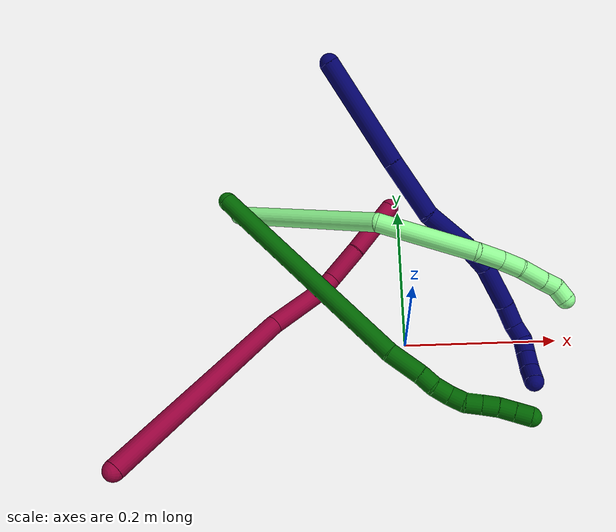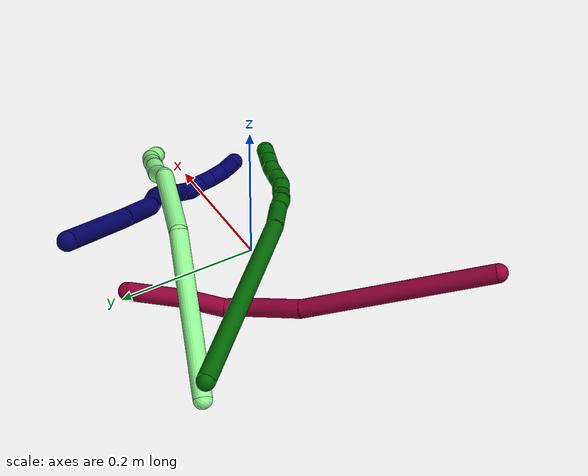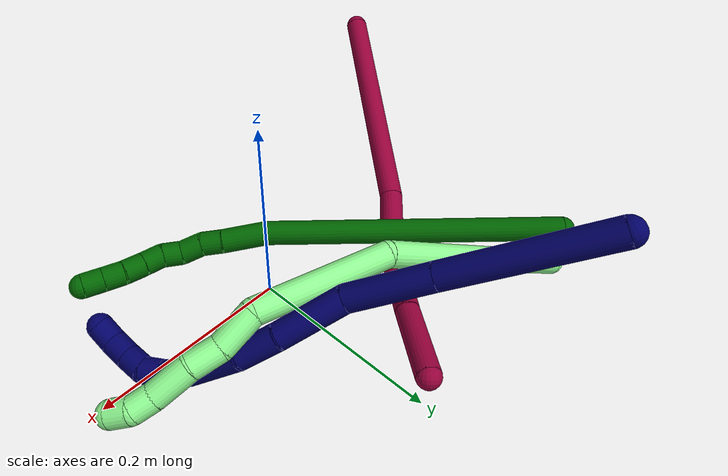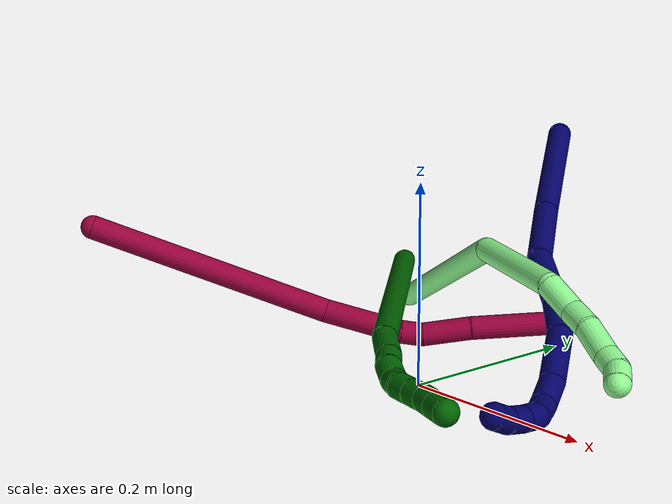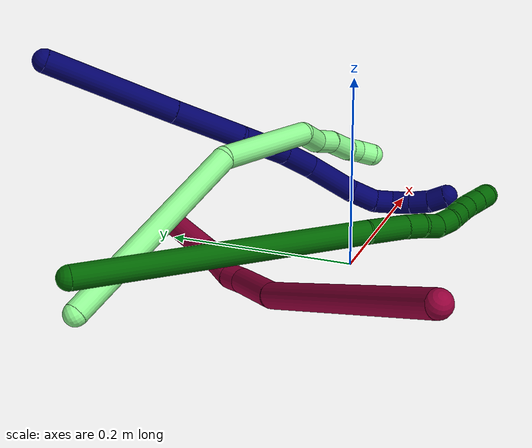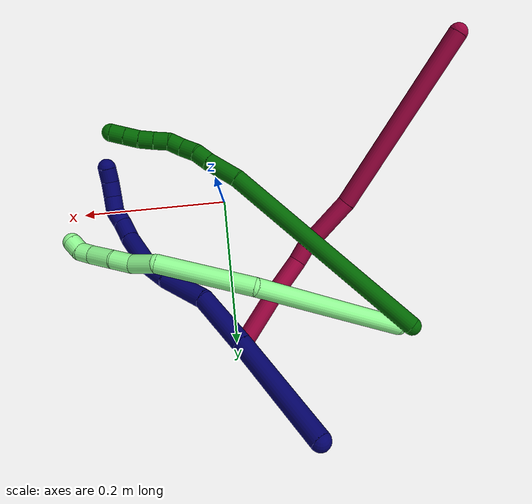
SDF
<sdf version="1.7">
 <world name="default">
  <model name="6">
   <static>0</static>
   <link name="6">
    <collision name="collision-cylinder-e_1_1_4">
     <pose>0.005846 -0.02897 -0.15028 2.95116 0.038176 0.394573</pose>
     <geometry><cylinder><radius>0.0125</radius><length>0.306318</length></cylinder></geometry>
     <surface>
      <friction><ode><mu>1.16</mu><mu2>1.16</mu2><slip1>0</slip1><slip2>0</slip2></ode></friction>
      <contact><ode><kp>1e+06</kp><kd>1</kd><max_vel>0</max_vel><min_depth>0.001</min_depth></ode></contact>
     </surface>
    </collision>
    <visual name="visual-cylinder-e_1_1_4">
     <pose>0.005846 -0.02897 -0.15028 2.95116 0.038176 0.394573</pose>
     <geometry><cylinder><radius>0.0125</radius><length>0.306318</length></cylinder></geometry>
     <material><ambient>0 0.392157 0.003922 1</ambient></material>
    </visual>
    <collision name="collision-cylinder-e_2_4_5">
     <pose>0.015774 -0.059643 -0.32334 3.06695 0.176865 2.3444</pose>
     <geometry><cylinder><radius>0.0125</radius><length>0.04641</length></cylinder></geometry>
     <surface>
      <friction><ode><mu>1.16</mu><mu2>1.16</mu2><slip1>0</slip1><slip2>0</slip2></ode></friction>
      <contact><ode><kp>1e+06</kp><kd>1</kd><max_vel>0</max_vel><min_depth>0.001</min_depth></ode></contact>
     </surface>
    </collision>
    <visual name="visual-cylinder-e_2_4_5">
     <pose>0.015774 -0.059643 -0.32334 3.06695 0.176865 2.3444</pose>
     <geometry><cylinder><radius>0.0125</radius><length>0.04641</length></cylinder></geometry>
     <material><ambient>0 0.392157 0.003922 1</ambient></material>
    </visual>
    <collision name="collision-cylinder-e_3_5_6">
     <pose>0.020612 -0.062179 -0.356815 3.06389 0.070257 1.4702</pose>
     <geometry><cylinder><radius>0.0125</radius><length>0.021509</length></cylinder></geometry>
     <surface>
      <friction><ode><mu>1.16</mu><mu2>1.16</mu2><slip1>0</slip1><slip2>0</slip2></ode></friction>
      <contact><ode><kp>1e+06</kp><kd>1</kd><max_vel>0</max_vel><min_depth>0.001</min_depth></ode></contact>
     </surface>
    </collision>
    <visual name="visual-cylinder-e_3_5_6">
     <pose>0.020612 -0.062179 -0.356815 3.06389 0.070257 1.4702</pose>
     <geometry><cylinder><radius>0.0125</radius><length>0.021509</length></cylinder></geometry>
     <material><ambient>0 0.392157 0.003922 1</ambient></material>
    </visual>
    <collision name="collision-cylinder-e_4_6_7">
     <pose>0.024336 -0.061417 -0.378454 -2.99684 0.262341 -2.13658</pose>
     <geometry><cylinder><radius>0.0125</radius><length>0.0229</length></cylinder></geometry>
     <surface>
      <friction><ode><mu>1.16</mu><mu2>1.16</mu2><slip1>0</slip1><slip2>0</slip2></ode></friction>
      <contact><ode><kp>1e+06</kp><kd>1</kd><max_vel>0</max_vel><min_depth>0.001</min_depth></ode></contact>
     </surface>
    </collision>
    <visual name="visual-cylinder-e_4_6_7">
     <pose>0.024336 -0.061417 -0.378454 -2.99684 0.262341 -2.13658</pose>
     <geometry><cylinder><radius>0.0125</radius><length>0.0229</length></cylinder></geometry>
     <material><ambient>0 0.392157 0.003922 1</ambient></material>
    </visual>
    <collision name="collision-cylinder-e_5_7_8">
     <pose>0.030744 -0.062082 -0.398773 2.90508 0.342392 1.93739</pose>
     <geometry><cylinder><radius>0.0125</radius><length>0.020479</length></cylinder></geometry>
     <surface>
      <friction><ode><mu>1.16</mu><mu2>1.16</mu2><slip1>0</slip1><slip2>0</slip2></ode></friction>
      <contact><ode><kp>1e+06</kp><kd>1</kd><max_vel>0</max_vel><min_depth>0.001</min_depth></ode></contact>
     </surface>
    </collision>
    <visual name="visual-cylinder-e_5_7_8">
     <pose>0.030744 -0.062082 -0.398773 2.90508 0.342392 1.93739</pose>
     <geometry><cylinder><radius>0.0125</radius><length>0.020479</length></cylinder></geometry>
     <material><ambient>0 0.392157 0.003922 1</ambient></material>
    </visual>
    <collision name="collision-cylinder-e_6_8_9">
     <pose>0.040627 -0.064739 -0.416158 3.09207 0.677123 3.00114</pose>
     <geometry><cylinder><radius>0.0125</radius><length>0.020574</length></cylinder></geometry>
     <surface>
      <friction><ode><mu>1.16</mu><mu2>1.16</mu2><slip1>0</slip1><slip2>0</slip2></ode></friction>
      <contact><ode><kp>1e+06</kp><kd>1</kd><max_vel>0</max_vel><min_depth>0.001</min_depth></ode></contact>
     </surface>
    </collision>
    <visual name="visual-cylinder-e_6_8_9">
     <pose>0.040627 -0.064739 -0.416158 3.09207 0.677123 3.00114</pose>
     <geometry><cylinder><radius>0.0125</radius><length>0.020574</length></cylinder></geometry>
     <material><ambient>0 0.392157 0.003922 1</ambient></material>
    </visual>
    <collision name="collision-cylinder-e_7_9_10">
     <pose>0.053401 -0.065854 -0.43243 3.05491 0.65171 2.88631</pose>
     <geometry><cylinder><radius>0.0125</radius><length>0.020868</length></cylinder></geometry>
     <surface>
      <friction><ode><mu>1.16</mu><mu2>1.16</mu2><slip1>0</slip1><slip2>0</slip2></ode></friction>
      <contact><ode><kp>1e+06</kp><kd>1</kd><max_vel>0</max_vel><min_depth>0.001</min_depth></ode></contact>
     </surface>
    </collision>
    <visual name="visual-cylinder-e_7_9_10">
     <pose>0.053401 -0.065854 -0.43243 3.05491 0.65171 2.88631</pose>
     <geometry><cylinder><radius>0.0125</radius><length>0.020868</length></cylinder></geometry>
     <material><ambient>0 0.392157 0.003922 1</ambient></material>
    </visual>
    <collision name="collision-cylinder-e_8_10_11">
     <pose>0.064805 -0.06766 -0.449574 3.01974 0.516023 2.68725</pose>
     <geometry><cylinder><radius>0.0125</radius><length>0.020571</length></cylinder></geometry>
     <surface>
      <friction><ode><mu>1.16</mu><mu2>1.16</mu2><slip1>0</slip1><slip2>0</slip2></ode></friction>
      <contact><ode><kp>1e+06</kp><kd>1</kd><max_vel>0</max_vel><min_depth>0.001</min_depth></ode></contact>
     </surface>
    </collision>
    <visual name="visual-cylinder-e_8_10_11">
     <pose>0.064805 -0.06766 -0.449574 3.01974 0.516023 2.68725</pose>
     <geometry><cylinder><radius>0.0125</radius><length>0.020571</length></cylinder></geometry>
     <material><ambient>0 0.392157 0.003922 1</ambient></material>
    </visual>
    <collision name="collision-cylinder-e_9_11_2">
     <pose>0.074888 -0.069908 -0.467246 3.01026 0.51401 2.65125</pose>
     <geometry><cylinder><radius>0.0125</radius><length>0.020371</length></cylinder></geometry>
     <surface>
      <friction><ode><mu>1.16</mu><mu2>1.16</mu2><slip1>0</slip1><slip2>0</slip2></ode></friction>
      <contact><ode><kp>1e+06</kp><kd>1</kd><max_vel>0</max_vel><min_depth>0.001</min_depth></ode></contact>
     </surface>
    </collision>
    <visual name="visual-cylinder-e_9_11_2">
     <pose>0.074888 -0.069908 -0.467246 3.01026 0.51401 2.65125</pose>
     <geometry><cylinder><radius>0.0125</radius><length>0.020371</length></cylinder></geometry>
     <material><ambient>0 0.392157 0.003922 1</ambient></material>
    </visual>
    <collision name="collision-sphere-2">
     <pose>0.079896 -0.07107 -0.476039 0 -0 0</pose>
     <geometry><sphere><radius>0.0125</radius></sphere></geometry>
     <surface>
      <friction><ode><mu>1.16</mu><mu2>1.16</mu2><slip1>0</slip1><slip2>0</slip2></ode></friction>
      <contact><ode><kp>1e+06</kp><kd>1</kd><max_vel>0</max_vel><min_depth>0.001</min_depth></ode></contact>
     </surface>
    </collision>
    <visual name="visual-sphere-2">
     <pose>0.079896 -0.07107 -0.476039 0 -0 0</pose>
     <geometry><sphere><radius>0.0125</radius></sphere></geometry>
     <material><ambient>0 0.392157 0.003922 1</ambient></material>
    </visual>
    <collision name="collision-sphere-11">
     <pose>0.06988 -0.068747 -0.458454 0 -0 0</pose>
     <geometry><sphere><radius>0.0125</radius></sphere></geometry>
     <surface>
      <friction><ode><mu>1.16</mu><mu2>1.16</mu2><slip1>0</slip1><slip2>0</slip2></ode></friction>
      <contact><ode><kp>1e+06</kp><kd>1</kd><max_vel>0</max_vel><min_depth>0.001</min_depth></ode></contact>
     </surface>
    </collision>
    <visual name="visual-sphere-11">
     <pose>0.06988 -0.068747 -0.458454 0 -0 0</pose>
     <geometry><sphere><radius>0.0125</radius></sphere></geometry>
     <material><ambient>0 0.392157 0.003922 1</ambient></material>
    </visual>
    <collision name="collision-sphere-10">
     <pose>0.05973 -0.066572 -0.440694 0 -0 0</pose>
     <geometry><sphere><radius>0.0125</radius></sphere></geometry>
     <surface>
      <friction><ode><mu>1.16</mu><mu2>1.16</mu2><slip1>0</slip1><slip2>0</slip2></ode></friction>
      <contact><ode><kp>1e+06</kp><kd>1</kd><max_vel>0</max_vel><min_depth>0.001</min_depth></ode></contact>
     </surface>
    </collision>
    <visual name="visual-sphere-10">
     <pose>0.05973 -0.066572 -0.440694 0 -0 0</pose>
     <geometry><sphere><radius>0.0125</radius></sphere></geometry>
     <material><ambient>0 0.392157 0.003922 1</ambient></material>
    </visual>
    <collision name="collision-sphere-9">
     <pose>0.047072 -0.065136 -0.424165 0 -0 0</pose>
     <geometry><sphere><radius>0.0125</radius></sphere></geometry>
     <surface>
      <friction><ode><mu>1.16</mu><mu2>1.16</mu2><slip1>0</slip1><slip2>0</slip2></ode></friction>
      <contact><ode><kp>1e+06</kp><kd>1</kd><max_vel>0</max_vel><min_depth>0.001</min_depth></ode></contact>
     </surface>
    </collision>
    <visual name="visual-sphere-9">
     <pose>0.047072 -0.065136 -0.424165 0 -0 0</pose>
     <geometry><sphere><radius>0.0125</radius></sphere></geometry>
     <material><ambient>0 0.392157 0.003922 1</ambient></material>
    </visual>
    <collision name="collision-sphere-4">
     <pose>0.011691 -0.05794 -0.300561 0 -0 0</pose>
     <geometry><sphere><radius>0.0125</radius></sphere></geometry>
     <surface>
      <friction><ode><mu>1.16</mu><mu2>1.16</mu2><slip1>0</slip1><slip2>0</slip2></ode></friction>
      <contact><ode><kp>1e+06</kp><kd>1</kd><max_vel>0</max_vel><min_depth>0.001</min_depth></ode></contact>
     </surface>
    </collision>
    <visual name="visual-sphere-4">
     <pose>0.011691 -0.05794 -0.300561 0 -0 0</pose>
     <geometry><sphere><radius>0.0125</radius></sphere></geometry>
     <material><ambient>0 0.392157 0.003922 1</ambient></material>
    </visual>
    <collision name="collision-sphere-1">
     <geometry><sphere><radius>0.0125</radius></sphere></geometry>
     <surface>
      <friction><ode><mu>1.16</mu><mu2>1.16</mu2><slip1>0</slip1><slip2>0</slip2></ode></friction>
      <contact><ode><kp>1e+06</kp><kd>1</kd><max_vel>0</max_vel><min_depth>0.001</min_depth></ode></contact>
     </surface>
    </collision>
    <visual name="visual-sphere-1">
     <geometry><sphere><radius>0.0125</radius></sphere></geometry>
     <material><ambient>0 0.392157 0.003922 1</ambient></material>
    </visual>
    <collision name="collision-sphere-8">
     <pose>0.034181 -0.064342 -0.40815 0 -0 0</pose>
     <geometry><sphere><radius>0.0125</radius></sphere></geometry>
     <surface>
      <friction><ode><mu>1.16</mu><mu2>1.16</mu2><slip1>0</slip1><slip2>0</slip2></ode></friction>
      <contact><ode><kp>1e+06</kp><kd>1</kd><max_vel>0</max_vel><min_depth>0.001</min_depth></ode></contact>
     </surface>
    </collision>
    <visual name="visual-sphere-8">
     <pose>0.034181 -0.064342 -0.40815 0 -0 0</pose>
     <geometry><sphere><radius>0.0125</radius></sphere></geometry>
     <material><ambient>0 0.392157 0.003922 1</ambient></material>
    </visual>
    <collision name="collision-sphere-5">
     <pose>0.019857 -0.061347 -0.34612 0 -0 0</pose>
     <geometry><sphere><radius>0.0125</radius></sphere></geometry>
     <surface>
      <friction><ode><mu>1.16</mu><mu2>1.16</mu2><slip1>0</slip1><slip2>0</slip2></ode></friction>
      <contact><ode><kp>1e+06</kp><kd>1</kd><max_vel>0</max_vel><min_depth>0.001</min_depth></ode></contact>
     </surface>
    </collision>
    <visual name="visual-sphere-5">
     <pose>0.019857 -0.061347 -0.34612 0 -0 0</pose>
     <geometry><sphere><radius>0.0125</radius></sphere></geometry>
     <material><ambient>0 0.392157 0.003922 1</ambient></material>
    </visual>
    <collision name="collision-sphere-6">
     <pose>0.021367 -0.063012 -0.367511 0 -0 0</pose>
     <geometry><sphere><radius>0.0125</radius></sphere></geometry>
     <surface>
      <friction><ode><mu>1.16</mu><mu2>1.16</mu2><slip1>0</slip1><slip2>0</slip2></ode></friction>
      <contact><ode><kp>1e+06</kp><kd>1</kd><max_vel>0</max_vel><min_depth>0.001</min_depth></ode></contact>
     </surface>
    </collision>
    <visual name="visual-sphere-6">
     <pose>0.021367 -0.063012 -0.367511 0 -0 0</pose>
     <geometry><sphere><radius>0.0125</radius></sphere></geometry>
     <material><ambient>0 0.392157 0.003922 1</ambient></material>
    </visual>
    <collision name="collision-sphere-7">
     <pose>0.027306 -0.059822 -0.389396 0 -0 0</pose>
     <geometry><sphere><radius>0.0125</radius></sphere></geometry>
     <surface>
      <friction><ode><mu>1.16</mu><mu2>1.16</mu2><slip1>0</slip1><slip2>0</slip2></ode></friction>
      <contact><ode><kp>1e+06</kp><kd>1</kd><max_vel>0</max_vel><min_depth>0.001</min_depth></ode></contact>
     </surface>
    </collision>
    <visual name="visual-sphere-7">
     <pose>0.027306 -0.059822 -0.389396 0 -0 0</pose>
     <geometry><sphere><radius>0.0125</radius></sphere></geometry>
     <material><ambient>0 0.392157 0.003922 1</ambient></material>
    </visual>
    <inertial>
     <pose>0.017924 -0.042359 -0.2438 0 -0 0</pose>
     <mass>0.5</mass>
     <inertia>
      <ixx>0.003149</ixx>
      <ixy>0</ixy>
      <ixz>0</ixz>
      <iyy>-0.001231</iyy>
      <iyz>0</iyz>
      <izz>0.000321</izz>
     </inertia>
    </inertial>
   </link>
   <pose>-0.234351 0.196158 0.053871 -1.35491 -0.198891 0.723652</pose>
  </model>
  <model name="7">
   <static>0</static>
   <link name="7">
    <collision name="collision-cylinder-e_1_1_4">
     <pose>0.030144 -0.065494 0.002116 1.5385 0.431153 0.41785</pose>
     <geometry><cylinder><radius>0.0125</radius><length>0.144257</length></cylinder></geometry>
     <surface>
      <friction><ode><mu>1.16</mu><mu2>1.16</mu2><slip1>0</slip1><slip2>0</slip2></ode></friction>
      <contact><ode><kp>1e+06</kp><kd>1</kd><max_vel>0</max_vel><min_depth>0.001</min_depth></ode></contact>
     </surface>
    </collision>
    <visual name="visual-cylinder-e_1_1_4">
     <pose>0.030144 -0.065494 0.002116 1.5385 0.431153 0.41785</pose>
     <geometry><cylinder><radius>0.0125</radius><length>0.144257</length></cylinder></geometry>
     <material><ambient>0.003922 0 0.403922 1</ambient></material>
    </visual>
    <collision name="collision-cylinder-e_2_4_5">
     <pose>0.077585 -0.166115 0.005264 1.54141 0.457385 0.444579</pose>
     <geometry><cylinder><radius>0.0125</radius><length>0.078339</length></cylinder></geometry>
     <surface>
      <friction><ode><mu>1.16</mu><mu2>1.16</mu2><slip1>0</slip1><slip2>0</slip2></ode></friction>
      <contact><ode><kp>1e+06</kp><kd>1</kd><max_vel>0</max_vel><min_depth>0.001</min_depth></ode></contact>
     </surface>
    </collision>
    <visual name="visual-cylinder-e_2_4_5">
     <pose>0.077585 -0.166115 0.005264 1.54141 0.457385 0.444579</pose>
     <geometry><cylinder><radius>0.0125</radius><length>0.078339</length></cylinder></geometry>
     <material><ambient>0.003922 0 0.403922 1</ambient></material>
    </visual>
    <collision name="collision-cylinder-e_3_5_6">
     <pose>0.115922 -0.225151 0.00102 1.78802 0.70991 0.864557</pose>
     <geometry><cylinder><radius>0.0125</radius><length>0.064562</length></cylinder></geometry>
     <surface>
      <friction><ode><mu>1.16</mu><mu2>1.16</mu2><slip1>0</slip1><slip2>0</slip2></ode></friction>
      <contact><ode><kp>1e+06</kp><kd>1</kd><max_vel>0</max_vel><min_depth>0.001</min_depth></ode></contact>
     </surface>
    </collision>
    <visual name="visual-cylinder-e_3_5_6">
     <pose>0.115922 -0.225151 0.00102 1.78802 0.70991 0.864557</pose>
     <geometry><cylinder><radius>0.0125</radius><length>0.064562</length></cylinder></geometry>
     <material><ambient>0.003922 0 0.403922 1</ambient></material>
    </visual>
    <collision name="collision-cylinder-e_4_6_7">
     <pose>0.147666 -0.265505 -0.007533 1.76742 0.568102 0.683728</pose>
     <geometry><cylinder><radius>0.0125</radius><length>0.039792</length></cylinder></geometry>
     <surface>
      <friction><ode><mu>1.16</mu><mu2>1.16</mu2><slip1>0</slip1><slip2>0</slip2></ode></friction>
      <contact><ode><kp>1e+06</kp><kd>1</kd><max_vel>0</max_vel><min_depth>0.001</min_depth></ode></contact>
     </surface>
    </collision>
    <visual name="visual-cylinder-e_4_6_7">
     <pose>0.147666 -0.265505 -0.007533 1.76742 0.568102 0.683728</pose>
     <geometry><cylinder><radius>0.0125</radius><length>0.039792</length></cylinder></geometry>
     <material><ambient>0.003922 0 0.403922 1</ambient></material>
    </visual>
    <collision name="collision-cylinder-e_5_7_8">
     <pose>0.168214 -0.309253 -0.013552 1.67093 0.344449 0.379961</pose>
     <geometry><cylinder><radius>0.0125</radius><length>0.058299</length></cylinder></geometry>
     <surface>
      <friction><ode><mu>1.16</mu><mu2>1.16</mu2><slip1>0</slip1><slip2>0</slip2></ode></friction>
      <contact><ode><kp>1e+06</kp><kd>1</kd><max_vel>0</max_vel><min_depth>0.001</min_depth></ode></contact>
     </surface>
    </collision>
    <visual name="visual-cylinder-e_5_7_8">
     <pose>0.168214 -0.309253 -0.013552 1.67093 0.344449 0.379961</pose>
     <geometry><cylinder><radius>0.0125</radius><length>0.058299</length></cylinder></geometry>
     <material><ambient>0.003922 0 0.403922 1</ambient></material>
    </visual>
    <collision name="collision-cylinder-e_6_8_9">
     <pose>0.182197 -0.351121 -0.015045 1.48526 0.275912 0.253518</pose>
     <geometry><cylinder><radius>0.0125</radius><length>0.030393</length></cylinder></geometry>
     <surface>
      <friction><ode><mu>1.16</mu><mu2>1.16</mu2><slip1>0</slip1><slip2>0</slip2></ode></friction>
      <contact><ode><kp>1e+06</kp><kd>1</kd><max_vel>0</max_vel><min_depth>0.001</min_depth></ode></contact>
     </surface>
    </collision>
    <visual name="visual-cylinder-e_6_8_9">
     <pose>0.182197 -0.351121 -0.015045 1.48526 0.275912 0.253518</pose>
     <geometry><cylinder><radius>0.0125</radius><length>0.030393</length></cylinder></geometry>
     <material><ambient>0.003922 0 0.403922 1</ambient></material>
    </visual>
    <collision name="collision-cylinder-e_7_9_10">
     <pose>0.190561 -0.374561 -0.009766 1.14444 0.408996 0.265599</pose>
     <geometry><cylinder><radius>0.0125</radius><length>0.021241</length></cylinder></geometry>
     <surface>
      <friction><ode><mu>1.16</mu><mu2>1.16</mu2><slip1>0</slip1><slip2>0</slip2></ode></friction>
      <contact><ode><kp>1e+06</kp><kd>1</kd><max_vel>0</max_vel><min_depth>0.001</min_depth></ode></contact>
     </surface>
    </collision>
    <visual name="visual-cylinder-e_7_9_10">
     <pose>0.190561 -0.374561 -0.009766 1.14444 0.408996 0.265599</pose>
     <geometry><cylinder><radius>0.0125</radius><length>0.021241</length></cylinder></geometry>
     <material><ambient>0.003922 0 0.403922 1</ambient></material>
    </visual>
    <collision name="collision-cylinder-e_8_10_11">
     <pose>0.195009 -0.391484 0.001027 0.872098 0.021328 0.009939</pose>
     <geometry><cylinder><radius>0.0125</radius><length>0.021033</length></cylinder></geometry>
     <surface>
      <friction><ode><mu>1.16</mu><mu2>1.16</mu2><slip1>0</slip1><slip2>0</slip2></ode></friction>
      <contact><ode><kp>1e+06</kp><kd>1</kd><max_vel>0</max_vel><min_depth>0.001</min_depth></ode></contact>
     </surface>
    </collision>
    <visual name="visual-cylinder-e_8_10_11">
     <pose>0.195009 -0.391484 0.001027 0.872098 0.021328 0.009939</pose>
     <geometry><cylinder><radius>0.0125</radius><length>0.021033</length></cylinder></geometry>
     <material><ambient>0.003922 0 0.403922 1</ambient></material>
    </visual>
    <collision name="collision-cylinder-e_9_11_12">
     <pose>0.19559 -0.407056 0.01563 0.764639 0.032834 0.013204</pose>
     <geometry><cylinder><radius>0.0125</radius><length>0.02174</length></cylinder></geometry>
     <surface>
      <friction><ode><mu>1.16</mu><mu2>1.16</mu2><slip1>0</slip1><slip2>0</slip2></ode></friction>
      <contact><ode><kp>1e+06</kp><kd>1</kd><max_vel>0</max_vel><min_depth>0.001</min_depth></ode></contact>
     </surface>
    </collision>
    <visual name="visual-cylinder-e_9_11_12">
     <pose>0.19559 -0.407056 0.01563 0.764639 0.032834 0.013204</pose>
     <geometry><cylinder><radius>0.0125</radius><length>0.02174</length></cylinder></geometry>
     <material><ambient>0.003922 0 0.403922 1</ambient></material>
    </visual>
    <collision name="collision-cylinder-e_10_12_2">
     <pose>0.196714 -0.419638 0.032259 0.522493 0.075499 0.020194</pose>
     <geometry><cylinder><radius>0.0125</radius><length>0.020343</length></cylinder></geometry>
     <surface>
      <friction><ode><mu>1.16</mu><mu2>1.16</mu2><slip1>0</slip1><slip2>0</slip2></ode></friction>
      <contact><ode><kp>1e+06</kp><kd>1</kd><max_vel>0</max_vel><min_depth>0.001</min_depth></ode></contact>
     </surface>
    </collision>
    <visual name="visual-cylinder-e_10_12_2">
     <pose>0.196714 -0.419638 0.032259 0.522493 0.075499 0.020194</pose>
     <geometry><cylinder><radius>0.0125</radius><length>0.020343</length></cylinder></geometry>
     <material><ambient>0.003922 0 0.403922 1</ambient></material>
    </visual>
    <collision name="collision-sphere-2">
     <pose>0.197481 -0.4247 0.041048 0 -0 0</pose>
     <geometry><sphere><radius>0.0125</radius></sphere></geometry>
     <surface>
      <friction><ode><mu>1.16</mu><mu2>1.16</mu2><slip1>0</slip1><slip2>0</slip2></ode></friction>
      <contact><ode><kp>1e+06</kp><kd>1</kd><max_vel>0</max_vel><min_depth>0.001</min_depth></ode></contact>
     </surface>
    </collision>
    <visual name="visual-sphere-2">
     <pose>0.197481 -0.4247 0.041048 0 -0 0</pose>
     <geometry><sphere><radius>0.0125</radius></sphere></geometry>
     <material><ambient>0.003922 0 0.403922 1</ambient></material>
    </visual>
    <collision name="collision-sphere-12">
     <pose>0.195947 -0.414577 0.023469 0 -0 0</pose>
     <geometry><sphere><radius>0.0125</radius></sphere></geometry>
     <surface>
      <friction><ode><mu>1.16</mu><mu2>1.16</mu2><slip1>0</slip1><slip2>0</slip2></ode></friction>
      <contact><ode><kp>1e+06</kp><kd>1</kd><max_vel>0</max_vel><min_depth>0.001</min_depth></ode></contact>
     </surface>
    </collision>
    <visual name="visual-sphere-12">
     <pose>0.195947 -0.414577 0.023469 0 -0 0</pose>
     <geometry><sphere><radius>0.0125</radius></sphere></geometry>
     <material><ambient>0.003922 0 0.403922 1</ambient></material>
    </visual>
    <collision name="collision-sphere-11">
     <pose>0.195233 -0.399535 0.00779 0 -0 0</pose>
     <geometry><sphere><radius>0.0125</radius></sphere></geometry>
     <surface>
      <friction><ode><mu>1.16</mu><mu2>1.16</mu2><slip1>0</slip1><slip2>0</slip2></ode></friction>
      <contact><ode><kp>1e+06</kp><kd>1</kd><max_vel>0</max_vel><min_depth>0.001</min_depth></ode></contact>
     </surface>
    </collision>
    <visual name="visual-sphere-11">
     <pose>0.195233 -0.399535 0.00779 0 -0 0</pose>
     <geometry><sphere><radius>0.0125</radius></sphere></geometry>
     <material><ambient>0.003922 0 0.403922 1</ambient></material>
    </visual>
    <collision name="collision-sphere-10">
     <pose>0.194785 -0.383434 -0.005736 0 -0 0</pose>
     <geometry><sphere><radius>0.0125</radius></sphere></geometry>
     <surface>
      <friction><ode><mu>1.16</mu><mu2>1.16</mu2><slip1>0</slip1><slip2>0</slip2></ode></friction>
      <contact><ode><kp>1e+06</kp><kd>1</kd><max_vel>0</max_vel><min_depth>0.001</min_depth></ode></contact>
     </surface>
    </collision>
    <visual name="visual-sphere-10">
     <pose>0.194785 -0.383434 -0.005736 0 -0 0</pose>
     <geometry><sphere><radius>0.0125</radius></sphere></geometry>
     <material><ambient>0.003922 0 0.403922 1</ambient></material>
    </visual>
    <collision name="collision-sphere-9">
     <pose>0.186337 -0.365689 -0.013796 0 -0 0</pose>
     <geometry><sphere><radius>0.0125</radius></sphere></geometry>
     <surface>
      <friction><ode><mu>1.16</mu><mu2>1.16</mu2><slip1>0</slip1><slip2>0</slip2></ode></friction>
      <contact><ode><kp>1e+06</kp><kd>1</kd><max_vel>0</max_vel><min_depth>0.001</min_depth></ode></contact>
     </surface>
    </collision>
    <visual name="visual-sphere-9">
     <pose>0.186337 -0.365689 -0.013796 0 -0 0</pose>
     <geometry><sphere><radius>0.0125</radius></sphere></geometry>
     <material><ambient>0.003922 0 0.403922 1</ambient></material>
    </visual>
    <collision name="collision-sphere-4">
     <pose>0.060288 -0.130987 0.004232 0 -0 0</pose>
     <geometry><sphere><radius>0.0125</radius></sphere></geometry>
     <surface>
      <friction><ode><mu>1.16</mu><mu2>1.16</mu2><slip1>0</slip1><slip2>0</slip2></ode></friction>
      <contact><ode><kp>1e+06</kp><kd>1</kd><max_vel>0</max_vel><min_depth>0.001</min_depth></ode></contact>
     </surface>
    </collision>
    <visual name="visual-sphere-4">
     <pose>0.060288 -0.130987 0.004232 0 -0 0</pose>
     <geometry><sphere><radius>0.0125</radius></sphere></geometry>
     <material><ambient>0.003922 0 0.403922 1</ambient></material>
    </visual>
    <collision name="collision-sphere-1">
     <geometry><sphere><radius>0.0125</radius></sphere></geometry>
     <surface>
      <friction><ode><mu>1.16</mu><mu2>1.16</mu2><slip1>0</slip1><slip2>0</slip2></ode></friction>
      <contact><ode><kp>1e+06</kp><kd>1</kd><max_vel>0</max_vel><min_depth>0.001</min_depth></ode></contact>
     </surface>
    </collision>
    <visual name="visual-sphere-1">
     <geometry><sphere><radius>0.0125</radius></sphere></geometry>
     <material><ambient>0.003922 0 0.403922 1</ambient></material>
    </visual>
    <collision name="collision-sphere-8">
     <pose>0.178057 -0.336553 -0.016295 0 -0 0</pose>
     <geometry><sphere><radius>0.0125</radius></sphere></geometry>
     <surface>
      <friction><ode><mu>1.16</mu><mu2>1.16</mu2><slip1>0</slip1><slip2>0</slip2></ode></friction>
      <contact><ode><kp>1e+06</kp><kd>1</kd><max_vel>0</max_vel><min_depth>0.001</min_depth></ode></contact>
     </surface>
    </collision>
    <visual name="visual-sphere-8">
     <pose>0.178057 -0.336553 -0.016295 0 -0 0</pose>
     <geometry><sphere><radius>0.0125</radius></sphere></geometry>
     <material><ambient>0.003922 0 0.403922 1</ambient></material>
    </visual>
    <collision name="collision-sphere-5">
     <pose>0.094883 -0.201244 0.006297 0 -0 0</pose>
     <geometry><sphere><radius>0.0125</radius></sphere></geometry>
     <surface>
      <friction><ode><mu>1.16</mu><mu2>1.16</mu2><slip1>0</slip1><slip2>0</slip2></ode></friction>
      <contact><ode><kp>1e+06</kp><kd>1</kd><max_vel>0</max_vel><min_depth>0.001</min_depth></ode></contact>
     </surface>
    </collision>
    <visual name="visual-sphere-5">
     <pose>0.094883 -0.201244 0.006297 0 -0 0</pose>
     <geometry><sphere><radius>0.0125</radius></sphere></geometry>
     <material><ambient>0.003922 0 0.403922 1</ambient></material>
    </visual>
    <collision name="collision-sphere-6">
     <pose>0.136962 -0.249058 -0.004256 0 -0 0</pose>
     <geometry><sphere><radius>0.0125</radius></sphere></geometry>
     <surface>
      <friction><ode><mu>1.16</mu><mu2>1.16</mu2><slip1>0</slip1><slip2>0</slip2></ode></friction>
      <contact><ode><kp>1e+06</kp><kd>1</kd><max_vel>0</max_vel><min_depth>0.001</min_depth></ode></contact>
     </surface>
    </collision>
    <visual name="visual-sphere-6">
     <pose>0.136962 -0.249058 -0.004256 0 -0 0</pose>
     <geometry><sphere><radius>0.0125</radius></sphere></geometry>
     <material><ambient>0.003922 0 0.403922 1</ambient></material>
    </visual>
    <collision name="collision-sphere-7">
     <pose>0.158371 -0.281953 -0.010809 0 -0 0</pose>
     <geometry><sphere><radius>0.0125</radius></sphere></geometry>
     <surface>
      <friction><ode><mu>1.16</mu><mu2>1.16</mu2><slip1>0</slip1><slip2>0</slip2></ode></friction>
      <contact><ode><kp>1e+06</kp><kd>1</kd><max_vel>0</max_vel><min_depth>0.001</min_depth></ode></contact>
     </surface>
    </collision>
    <visual name="visual-sphere-7">
     <pose>0.158371 -0.281953 -0.010809 0 -0 0</pose>
     <geometry><sphere><radius>0.0125</radius></sphere></geometry>
     <material><ambient>0.003922 0 0.403922 1</ambient></material>
    </visual>
    <inertial>
     <pose>0.111068 -0.219679 9.3e-05 0 -0 0</pose>
     <mass>0.5</mass>
     <inertia>
      <ixx>0.000442</ixx>
      <ixy>0</ixy>
      <ixz>0</ixz>
      <iyy>0.000179</iyy>
      <iyz>0</iyz>
      <izz>0.00017</izz>
     </inertia>
    </inertial>
   </link>
   <pose>-0.086338 0.295627 0.210769 0.617678 -0.133977 0.057355</pose>
  </model>
  <model name="8">
   <static>0</static>
   <link name="8">
    <collision name="collision-cylinder-e_1_1_4">
     <pose>0.062271 0.038728 -0.108001 -2.79729 0.49725 -1.94059</pose>
     <geometry><cylinder><radius>0.0125</radius><length>0.261088</length></cylinder></geometry>
     <surface>
      <friction><ode><mu>1.16</mu><mu2>1.16</mu2><slip1>0</slip1><slip2>0</slip2></ode></friction>
      <contact><ode><kp>1e+06</kp><kd>1</kd><max_vel>0</max_vel><min_depth>0.001</min_depth></ode></contact>
     </surface>
    </collision>
    <visual name="visual-cylinder-e_1_1_4">
     <pose>0.062271 0.038728 -0.108001 -2.79729 0.49725 -1.94059</pose>
     <geometry><cylinder><radius>0.0125</radius><length>0.261088</length></cylinder></geometry>
     <material><ambient>0.584314 0 0.227451 1</ambient></material>
    </visual>
    <collision name="collision-cylinder-e_2_4_5">
     <pose>0.150287 0.084451 -0.247706 -2.92442 0.670445 -2.53504</pose>
     <geometry><cylinder><radius>0.0125</radius><length>0.082871</length></cylinder></geometry>
     <surface>
      <friction><ode><mu>1.16</mu><mu2>1.16</mu2><slip1>0</slip1><slip2>0</slip2></ode></friction>
      <contact><ode><kp>1e+06</kp><kd>1</kd><max_vel>0</max_vel><min_depth>0.001</min_depth></ode></contact>
     </surface>
    </collision>
    <visual name="visual-cylinder-e_2_4_5">
     <pose>0.150287 0.084451 -0.247706 -2.92442 0.670445 -2.53504</pose>
     <geometry><cylinder><radius>0.0125</radius><length>0.082871</length></cylinder></geometry>
     <material><ambient>0.584314 0 0.227451 1</ambient></material>
    </visual>
    <collision name="collision-cylinder-e_3_5_6">
     <pose>0.183413 0.096055 -0.287757 -2.63717 0.65872 -1.84959</pose>
     <geometry><cylinder><radius>0.0125</radius><length>0.024117</length></cylinder></geometry>
     <surface>
      <friction><ode><mu>1.16</mu><mu2>1.16</mu2><slip1>0</slip1><slip2>0</slip2></ode></friction>
      <contact><ode><kp>1e+06</kp><kd>1</kd><max_vel>0</max_vel><min_depth>0.001</min_depth></ode></contact>
     </surface>
    </collision>
    <visual name="visual-cylinder-e_3_5_6">
     <pose>0.183413 0.096055 -0.287757 -2.63717 0.65872 -1.84959</pose>
     <geometry><cylinder><radius>0.0125</radius><length>0.024117</length></cylinder></geometry>
     <material><ambient>0.584314 0 0.227451 1</ambient></material>
    </visual>
    <collision name="collision-cylinder-e_4_6_7">
     <pose>0.212149 0.10969 -0.308111 -2.49692 0.957833 -1.99839</pose>
     <geometry><cylinder><radius>0.0125</radius><length>0.052217</length></cylinder></geometry>
     <surface>
      <friction><ode><mu>1.16</mu><mu2>1.16</mu2><slip1>0</slip1><slip2>0</slip2></ode></friction>
      <contact><ode><kp>1e+06</kp><kd>1</kd><max_vel>0</max_vel><min_depth>0.001</min_depth></ode></contact>
     </surface>
    </collision>
    <visual name="visual-cylinder-e_4_6_7">
     <pose>0.212149 0.10969 -0.308111 -2.49692 0.957833 -1.99839</pose>
     <geometry><cylinder><radius>0.0125</radius><length>0.052217</length></cylinder></geometry>
     <material><ambient>0.584314 0 0.227451 1</ambient></material>
    </visual>
    <collision name="collision-cylinder-e_5_7_2">
     <pose>0.263481 0.134192 -0.341335 -2.51143 0.851333 -1.89499</pose>
     <geometry><cylinder><radius>0.0125</radius><length>0.079708</length></cylinder></geometry>
     <surface>
      <friction><ode><mu>1.16</mu><mu2>1.16</mu2><slip1>0</slip1><slip2>0</slip2></ode></friction>
      <contact><ode><kp>1e+06</kp><kd>1</kd><max_vel>0</max_vel><min_depth>0.001</min_depth></ode></contact>
     </surface>
    </collision>
    <visual name="visual-cylinder-e_5_7_2">
     <pose>0.263481 0.134192 -0.341335 -2.51143 0.851333 -1.89499</pose>
     <geometry><cylinder><radius>0.0125</radius><length>0.079708</length></cylinder></geometry>
     <material><ambient>0.584314 0 0.227451 1</ambient></material>
    </visual>
    <collision name="collision-sphere-2">
     <pose>0.293458 0.149668 -0.362554 0 -0 0</pose>
     <geometry><sphere><radius>0.0125</radius></sphere></geometry>
     <surface>
      <friction><ode><mu>1.16</mu><mu2>1.16</mu2><slip1>0</slip1><slip2>0</slip2></ode></friction>
      <contact><ode><kp>1e+06</kp><kd>1</kd><max_vel>0</max_vel><min_depth>0.001</min_depth></ode></contact>
     </surface>
    </collision>
    <visual name="visual-sphere-2">
     <pose>0.293458 0.149668 -0.362554 0 -0 0</pose>
     <geometry><sphere><radius>0.0125</radius></sphere></geometry>
     <material><ambient>0.584314 0 0.227451 1</ambient></material>
    </visual>
    <collision name="collision-sphere-7">
     <pose>0.233504 0.118716 -0.320116 0 -0 0</pose>
     <geometry><sphere><radius>0.0125</radius></sphere></geometry>
     <surface>
      <friction><ode><mu>1.16</mu><mu2>1.16</mu2><slip1>0</slip1><slip2>0</slip2></ode></friction>
      <contact><ode><kp>1e+06</kp><kd>1</kd><max_vel>0</max_vel><min_depth>0.001</min_depth></ode></contact>
     </surface>
    </collision>
    <visual name="visual-sphere-7">
     <pose>0.233504 0.118716 -0.320116 0 -0 0</pose>
     <geometry><sphere><radius>0.0125</radius></sphere></geometry>
     <material><ambient>0.584314 0 0.227451 1</ambient></material>
    </visual>
    <collision name="collision-sphere-6">
     <pose>0.190794 0.100664 -0.296105 0 -0 0</pose>
     <geometry><sphere><radius>0.0125</radius></sphere></geometry>
     <surface>
      <friction><ode><mu>1.16</mu><mu2>1.16</mu2><slip1>0</slip1><slip2>0</slip2></ode></friction>
      <contact><ode><kp>1e+06</kp><kd>1</kd><max_vel>0</max_vel><min_depth>0.001</min_depth></ode></contact>
     </surface>
    </collision>
    <visual name="visual-sphere-6">
     <pose>0.190794 0.100664 -0.296105 0 -0 0</pose>
     <geometry><sphere><radius>0.0125</radius></sphere></geometry>
     <material><ambient>0.584314 0 0.227451 1</ambient></material>
    </visual>
    <collision name="collision-sphere-5">
     <pose>0.176032 0.091447 -0.27941 0 -0 0</pose>
     <geometry><sphere><radius>0.0125</radius></sphere></geometry>
     <surface>
      <friction><ode><mu>1.16</mu><mu2>1.16</mu2><slip1>0</slip1><slip2>0</slip2></ode></friction>
      <contact><ode><kp>1e+06</kp><kd>1</kd><max_vel>0</max_vel><min_depth>0.001</min_depth></ode></contact>
     </surface>
    </collision>
    <visual name="visual-sphere-5">
     <pose>0.176032 0.091447 -0.27941 0 -0 0</pose>
     <geometry><sphere><radius>0.0125</radius></sphere></geometry>
     <material><ambient>0.584314 0 0.227451 1</ambient></material>
    </visual>
    <collision name="collision-sphere-1">
     <geometry><sphere><radius>0.0125</radius></sphere></geometry>
     <surface>
      <friction><ode><mu>1.16</mu><mu2>1.16</mu2><slip1>0</slip1><slip2>0</slip2></ode></friction>
      <contact><ode><kp>1e+06</kp><kd>1</kd><max_vel>0</max_vel><min_depth>0.001</min_depth></ode></contact>
     </surface>
    </collision>
    <visual name="visual-sphere-1">
     <geometry><sphere><radius>0.0125</radius></sphere></geometry>
     <material><ambient>0.584314 0 0.227451 1</ambient></material>
    </visual>
    <collision name="collision-sphere-4">
     <pose>0.124542 0.077456 -0.216002 0 -0 0</pose>
     <geometry><sphere><radius>0.0125</radius></sphere></geometry>
     <surface>
      <friction><ode><mu>1.16</mu><mu2>1.16</mu2><slip1>0</slip1><slip2>0</slip2></ode></friction>
      <contact><ode><kp>1e+06</kp><kd>1</kd><max_vel>0</max_vel><min_depth>0.001</min_depth></ode></contact>
     </surface>
    </collision>
    <visual name="visual-sphere-4">
     <pose>0.124542 0.077456 -0.216002 0 -0 0</pose>
     <geometry><sphere><radius>0.0125</radius></sphere></geometry>
     <material><ambient>0.584314 0 0.227451 1</ambient></material>
    </visual>
    <inertial>
     <pose>0.13043 0.0717 -0.197921 0 -0 0</pose>
     <mass>0.5</mass>
     <inertia>
      <ixx>-0.001781</ixx>
      <ixy>0</ixy>
      <ixz>0</ixz>
      <iyy>-0.000452</iyy>
      <iyz>0</iyz>
      <izz>-0.001294</izz>
     </inertia>
    </inertial>
   </link>
   <pose>-0.320367 -0.169638 0.129677 0.180559 -0.601371 0.410658</pose>
  </model>
  <model name="13">
   <static>0</static>
   <link name="13">
    <collision name="collision-cylinder-e_1_1_4">
     <pose>0.057525 -0.029158 -0.093739 2.84003 0.530043 2.12091</pose>
     <geometry><cylinder><radius>0.0125</radius><length>0.227563</length></cylinder></geometry>
     <surface>
      <friction><ode><mu>1.16</mu><mu2>1.16</mu2><slip1>0</slip1><slip2>0</slip2></ode></friction>
      <contact><ode><kp>1e+06</kp><kd>1</kd><max_vel>0</max_vel><min_depth>0.001</min_depth></ode></contact>
     </surface>
    </collision>
    <visual name="visual-cylinder-e_1_1_4">
     <pose>0.057525 -0.029158 -0.093739 2.84003 0.530043 2.12091</pose>
     <geometry><cylinder><radius>0.0125</radius><length>0.227563</length></cylinder></geometry>
     <material><ambient>0.564706 0.984314 0.572549 1</ambient></material>
    </visual>
    <collision name="collision-cylinder-e_2_4_5">
     <pose>0.161063 -0.04692 -0.230921 -2.88506 0.797504 -2.54748</pose>
     <geometry><cylinder><radius>0.0125</radius><length>0.128598</length></cylinder></geometry>
     <surface>
      <friction><ode><mu>1.16</mu><mu2>1.16</mu2><slip1>0</slip1><slip2>0</slip2></ode></friction>
      <contact><ode><kp>1e+06</kp><kd>1</kd><max_vel>0</max_vel><min_depth>0.001</min_depth></ode></contact>
     </surface>
    </collision>
    <visual name="visual-cylinder-e_2_4_5">
     <pose>0.161063 -0.04692 -0.230921 -2.88506 0.797504 -2.54748</pose>
     <geometry><cylinder><radius>0.0125</radius><length>0.128598</length></cylinder></geometry>
     <material><ambient>0.564706 0.984314 0.572549 1</ambient></material>
    </visual>
    <collision name="collision-cylinder-e_3_5_6">
     <pose>0.223063 -0.026897 -0.279785 -2.13181 1.00338 -1.56323</pose>
     <geometry><cylinder><radius>0.0125</radius><length>0.037915</length></cylinder></geometry>
     <surface>
      <friction><ode><mu>1.16</mu><mu2>1.16</mu2><slip1>0</slip1><slip2>0</slip2></ode></friction>
      <contact><ode><kp>1e+06</kp><kd>1</kd><max_vel>0</max_vel><min_depth>0.001</min_depth></ode></contact>
     </surface>
    </collision>
    <visual name="visual-cylinder-e_3_5_6">
     <pose>0.223063 -0.026897 -0.279785 -2.13181 1.00338 -1.56323</pose>
     <geometry><cylinder><radius>0.0125</radius><length>0.037915</length></cylinder></geometry>
     <material><ambient>0.564706 0.984314 0.572549 1</ambient></material>
    </visual>
    <collision name="collision-cylinder-e_4_6_7">
     <pose>0.249731 -0.012983 -0.29314 -2.55375 0.8421 -1.95287</pose>
     <geometry><cylinder><radius>0.0125</radius><length>0.028636</length></cylinder></geometry>
     <surface>
      <friction><ode><mu>1.16</mu><mu2>1.16</mu2><slip1>0</slip1><slip2>0</slip2></ode></friction>
      <contact><ode><kp>1e+06</kp><kd>1</kd><max_vel>0</max_vel><min_depth>0.001</min_depth></ode></contact>
     </surface>
    </collision>
    <visual name="visual-cylinder-e_4_6_7">
     <pose>0.249731 -0.012983 -0.29314 -2.55375 0.8421 -1.95287</pose>
     <geometry><cylinder><radius>0.0125</radius><length>0.028636</length></cylinder></geometry>
     <material><ambient>0.564706 0.984314 0.572549 1</ambient></material>
    </visual>
    <collision name="collision-cylinder-e_5_7_8">
     <pose>0.274068 0.002123 -0.308691 -2.23064 0.832443 -1.46834</pose>
     <geometry><cylinder><radius>0.0125</radius><length>0.036927</length></cylinder></geometry>
     <surface>
      <friction><ode><mu>1.16</mu><mu2>1.16</mu2><slip1>0</slip1><slip2>0</slip2></ode></friction>
      <contact><ode><kp>1e+06</kp><kd>1</kd><max_vel>0</max_vel><min_depth>0.001</min_depth></ode></contact>
     </surface>
    </collision>
    <visual name="visual-cylinder-e_5_7_8">
     <pose>0.274068 0.002123 -0.308691 -2.23064 0.832443 -1.46834</pose>
     <geometry><cylinder><radius>0.0125</radius><length>0.036927</length></cylinder></geometry>
     <material><ambient>0.564706 0.984314 0.572549 1</ambient></material>
    </visual>
    <collision name="collision-cylinder-e_6_8_9">
     <pose>0.295096 0.016378 -0.321705 -2.45344 0.812363 -1.75235</pose>
     <geometry><cylinder><radius>0.0125</radius><length>0.020311</length></cylinder></geometry>
     <surface>
      <friction><ode><mu>1.16</mu><mu2>1.16</mu2><slip1>0</slip1><slip2>0</slip2></ode></friction>
      <contact><ode><kp>1e+06</kp><kd>1</kd><max_vel>0</max_vel><min_depth>0.001</min_depth></ode></contact>
     </surface>
    </collision>
    <visual name="visual-cylinder-e_6_8_9">
     <pose>0.295096 0.016378 -0.321705 -2.45344 0.812363 -1.75235</pose>
     <geometry><cylinder><radius>0.0125</radius><length>0.020311</length></cylinder></geometry>
     <material><ambient>0.564706 0.984314 0.572549 1</ambient></material>
    </visual>
    <collision name="collision-cylinder-e_7_9_2">
     <pose>0.305771 0.027135 -0.334144 -2.41027 0.335739 -0.833371</pose>
     <geometry><cylinder><radius>0.0125</radius><length>0.020049</length></cylinder></geometry>
     <surface>
      <friction><ode><mu>1.16</mu><mu2>1.16</mu2><slip1>0</slip1><slip2>0</slip2></ode></friction>
      <contact><ode><kp>1e+06</kp><kd>1</kd><max_vel>0</max_vel><min_depth>0.001</min_depth></ode></contact>
     </surface>
    </collision>
    <visual name="visual-cylinder-e_7_9_2">
     <pose>0.305771 0.027135 -0.334144 -2.41027 0.335739 -0.833371</pose>
     <geometry><cylinder><radius>0.0125</radius><length>0.020049</length></cylinder></geometry>
     <material><ambient>0.564706 0.984314 0.572549 1</ambient></material>
    </visual>
    <collision name="collision-sphere-2">
     <pose>0.309073 0.033457 -0.341189 0 -0 0</pose>
     <geometry><sphere><radius>0.0125</radius></sphere></geometry>
     <surface>
      <friction><ode><mu>1.16</mu><mu2>1.16</mu2><slip1>0</slip1><slip2>0</slip2></ode></friction>
      <contact><ode><kp>1e+06</kp><kd>1</kd><max_vel>0</max_vel><min_depth>0.001</min_depth></ode></contact>
     </surface>
    </collision>
    <visual name="visual-sphere-2">
     <pose>0.309073 0.033457 -0.341189 0 -0 0</pose>
     <geometry><sphere><radius>0.0125</radius></sphere></geometry>
     <material><ambient>0.564706 0.984314 0.572549 1</ambient></material>
    </visual>
    <collision name="collision-sphere-9">
     <pose>0.302468 0.020814 -0.3271 0 -0 0</pose>
     <geometry><sphere><radius>0.0125</radius></sphere></geometry>
     <surface>
      <friction><ode><mu>1.16</mu><mu2>1.16</mu2><slip1>0</slip1><slip2>0</slip2></ode></friction>
      <contact><ode><kp>1e+06</kp><kd>1</kd><max_vel>0</max_vel><min_depth>0.001</min_depth></ode></contact>
     </surface>
    </collision>
    <visual name="visual-sphere-9">
     <pose>0.302468 0.020814 -0.3271 0 -0 0</pose>
     <geometry><sphere><radius>0.0125</radius></sphere></geometry>
     <material><ambient>0.564706 0.984314 0.572549 1</ambient></material>
    </visual>
    <collision name="collision-sphere-4">
     <pose>0.115049 -0.058315 -0.187478 0 -0 0</pose>
     <geometry><sphere><radius>0.0125</radius></sphere></geometry>
     <surface>
      <friction><ode><mu>1.16</mu><mu2>1.16</mu2><slip1>0</slip1><slip2>0</slip2></ode></friction>
      <contact><ode><kp>1e+06</kp><kd>1</kd><max_vel>0</max_vel><min_depth>0.001</min_depth></ode></contact>
     </surface>
    </collision>
    <visual name="visual-sphere-4">
     <pose>0.115049 -0.058315 -0.187478 0 -0 0</pose>
     <geometry><sphere><radius>0.0125</radius></sphere></geometry>
     <material><ambient>0.564706 0.984314 0.572549 1</ambient></material>
    </visual>
    <collision name="collision-sphere-1">
     <geometry><sphere><radius>0.0125</radius></sphere></geometry>
     <surface>
      <friction><ode><mu>1.16</mu><mu2>1.16</mu2><slip1>0</slip1><slip2>0</slip2></ode></friction>
      <contact><ode><kp>1e+06</kp><kd>1</kd><max_vel>0</max_vel><min_depth>0.001</min_depth></ode></contact>
     </surface>
    </collision>
    <visual name="visual-sphere-1">
     <geometry><sphere><radius>0.0125</radius></sphere></geometry>
     <material><ambient>0.564706 0.984314 0.572549 1</ambient></material>
    </visual>
    <collision name="collision-sphere-8">
     <pose>0.287724 0.011942 -0.316309 0 -0 0</pose>
     <geometry><sphere><radius>0.0125</radius></sphere></geometry>
     <surface>
      <friction><ode><mu>1.16</mu><mu2>1.16</mu2><slip1>0</slip1><slip2>0</slip2></ode></friction>
      <contact><ode><kp>1e+06</kp><kd>1</kd><max_vel>0</max_vel><min_depth>0.001</min_depth></ode></contact>
     </surface>
    </collision>
    <visual name="visual-sphere-8">
     <pose>0.287724 0.011942 -0.316309 0 -0 0</pose>
     <geometry><sphere><radius>0.0125</radius></sphere></geometry>
     <material><ambient>0.564706 0.984314 0.572549 1</ambient></material>
    </visual>
    <collision name="collision-sphere-5">
     <pose>0.207076 -0.035524 -0.274364 0 -0 0</pose>
     <geometry><sphere><radius>0.0125</radius></sphere></geometry>
     <surface>
      <friction><ode><mu>1.16</mu><mu2>1.16</mu2><slip1>0</slip1><slip2>0</slip2></ode></friction>
      <contact><ode><kp>1e+06</kp><kd>1</kd><max_vel>0</max_vel><min_depth>0.001</min_depth></ode></contact>
     </surface>
    </collision>
    <visual name="visual-sphere-5">
     <pose>0.207076 -0.035524 -0.274364 0 -0 0</pose>
     <geometry><sphere><radius>0.0125</radius></sphere></geometry>
     <material><ambient>0.564706 0.984314 0.572549 1</ambient></material>
    </visual>
    <collision name="collision-sphere-6">
     <pose>0.239049 -0.01827 -0.285206 0 -0 0</pose>
     <geometry><sphere><radius>0.0125</radius></sphere></geometry>
     <surface>
      <friction><ode><mu>1.16</mu><mu2>1.16</mu2><slip1>0</slip1><slip2>0</slip2></ode></friction>
      <contact><ode><kp>1e+06</kp><kd>1</kd><max_vel>0</max_vel><min_depth>0.001</min_depth></ode></contact>
     </surface>
    </collision>
    <visual name="visual-sphere-6">
     <pose>0.239049 -0.01827 -0.285206 0 -0 0</pose>
     <geometry><sphere><radius>0.0125</radius></sphere></geometry>
     <material><ambient>0.564706 0.984314 0.572549 1</ambient></material>
    </visual>
    <collision name="collision-sphere-7">
     <pose>0.260413 -0.007696 -0.301074 0 -0 0</pose>
     <geometry><sphere><radius>0.0125</radius></sphere></geometry>
     <surface>
      <friction><ode><mu>1.16</mu><mu2>1.16</mu2><slip1>0</slip1><slip2>0</slip2></ode></friction>
      <contact><ode><kp>1e+06</kp><kd>1</kd><max_vel>0</max_vel><min_depth>0.001</min_depth></ode></contact>
     </surface>
    </collision>
    <visual name="visual-sphere-7">
     <pose>0.260413 -0.007696 -0.301074 0 -0 0</pose>
     <geometry><sphere><radius>0.0125</radius></sphere></geometry>
     <material><ambient>0.564706 0.984314 0.572549 1</ambient></material>
    </visual>
    <inertial>
     <pose>0.143313 -0.026211 -0.189325 0 -0 0</pose>
     <mass>0.5</mass>
     <inertia>
      <ixx>0.000119</ixx>
      <ixy>0</ixy>
      <ixz>0</ixz>
      <iyy>0.001445</iyy>
      <iyz>0</iyz>
      <izz>-0.000458</izz>
     </inertia>
    </inertial>
   </link>
   <pose>-0.224957 0.196966 0.012656 -2.00876 0.253469 0.433036</pose>
  </model>
 </world>
</sdf>
